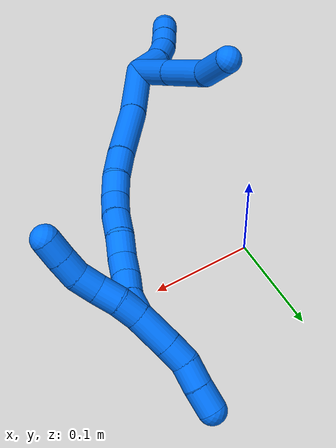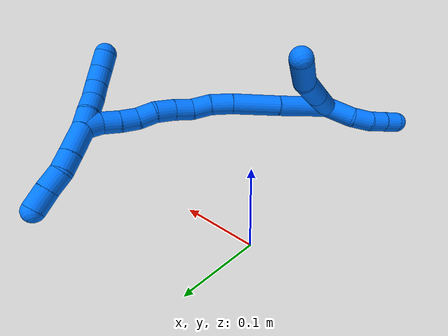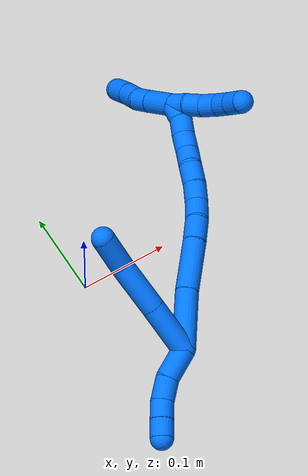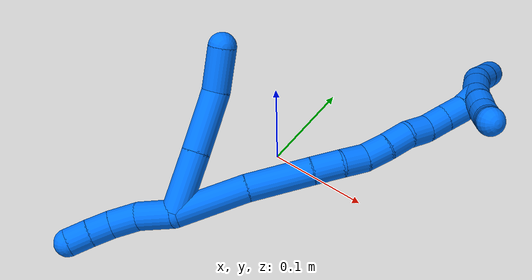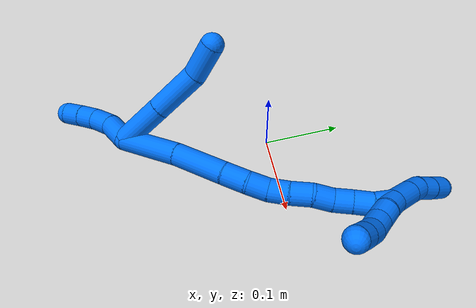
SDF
<sdf version="1.7">
 <world name="default">
  <model name="14">
   <static>0</static>
   <link name="14">
    <collision name="collision-cylinder-e_1_2_8">
     <pose>-0.008492 0.026161 -0.003708 -1.71158 -0.310983 0.35723</pose>
     <geometry><cylinder><radius>0.0125</radius><length>0.055507</length></cylinder></geometry>
     <surface>
      <friction><ode><mu>1.16</mu><mu2>1.16</mu2><slip1>0</slip1><slip2>0</slip2></ode></friction>
      <contact><ode><kp>1e+06</kp><kd>1</kd><max_vel>0</max_vel><min_depth>0.001</min_depth></ode></contact>
     </surface>
    </collision>
    <visual name="visual-cylinder-e_1_2_8">
     <pose>-0.008492 0.026161 -0.003708 -1.71158 -0.310983 0.35723</pose>
     <geometry><cylinder><radius>0.0125</radius><length>0.055507</length></cylinder></geometry>
     <material><ambient>0 0.462745 1 1</ambient></material>
    </visual>
    <collision name="collision-cylinder-e_2_8_9">
     <pose>-0.025578 0.07812 -0.011398 -1.72399 -0.318019 0.369775</pose>
     <geometry><cylinder><radius>0.0125</radius><length>0.054964</length></cylinder></geometry>
     <surface>
      <friction><ode><mu>1.16</mu><mu2>1.16</mu2><slip1>0</slip1><slip2>0</slip2></ode></friction>
      <contact><ode><kp>1e+06</kp><kd>1</kd><max_vel>0</max_vel><min_depth>0.001</min_depth></ode></contact>
     </surface>
    </collision>
    <visual name="visual-cylinder-e_2_8_9">
     <pose>-0.025578 0.07812 -0.011398 -1.72399 -0.318019 0.369775</pose>
     <geometry><cylinder><radius>0.0125</radius><length>0.054964</length></cylinder></geometry>
     <material><ambient>0 0.462745 1 1</ambient></material>
    </visual>
    <collision name="collision-cylinder-e_3_9_6">
     <pose>-0.04505 0.12037 -0.014106 -1.49341 -0.582847 0.541569</pose>
     <geometry><cylinder><radius>0.0125</radius><length>0.03953</length></cylinder></geometry>
     <surface>
      <friction><ode><mu>1.16</mu><mu2>1.16</mu2><slip1>0</slip1><slip2>0</slip2></ode></friction>
      <contact><ode><kp>1e+06</kp><kd>1</kd><max_vel>0</max_vel><min_depth>0.001</min_depth></ode></contact>
     </surface>
    </collision>
    <visual name="visual-cylinder-e_3_9_6">
     <pose>-0.04505 0.12037 -0.014106 -1.49341 -0.582847 0.541569</pose>
     <geometry><cylinder><radius>0.0125</radius><length>0.03953</length></cylinder></geometry>
     <material><ambient>0 0.462745 1 1</ambient></material>
    </visual>
    <collision name="collision-cylinder-e_1_2_10">
     <pose>-0.008047 -0.010783 -0.010783 2.35619 -0.485549 -1.07774</pose>
     <geometry><cylinder><radius>0.0125</radius><length>0.034484</length></cylinder></geometry>
     <surface>
      <friction><ode><mu>1.16</mu><mu2>1.16</mu2><slip1>0</slip1><slip2>0</slip2></ode></friction>
      <contact><ode><kp>1e+06</kp><kd>1</kd><max_vel>0</max_vel><min_depth>0.001</min_depth></ode></contact>
     </surface>
    </collision>
    <visual name="visual-cylinder-e_1_2_10">
     <pose>-0.008047 -0.010783 -0.010783 2.35619 -0.485549 -1.07774</pose>
     <geometry><cylinder><radius>0.0125</radius><length>0.034484</length></cylinder></geometry>
     <material><ambient>0 0.462745 1 1</ambient></material>
    </visual>
    <collision name="collision-cylinder-e_2_10_11">
     <pose>-0.021824 -0.031802 -0.026233 1.99867 -0.471133 -0.714502</pose>
     <geometry><cylinder><radius>0.0125</radius><length>0.025252</length></cylinder></geometry>
     <surface>
      <friction><ode><mu>1.16</mu><mu2>1.16</mu2><slip1>0</slip1><slip2>0</slip2></ode></friction>
      <contact><ode><kp>1e+06</kp><kd>1</kd><max_vel>0</max_vel><min_depth>0.001</min_depth></ode></contact>
     </surface>
    </collision>
    <visual name="visual-cylinder-e_2_10_11">
     <pose>-0.021824 -0.031802 -0.026233 1.99867 -0.471133 -0.714502</pose>
     <geometry><cylinder><radius>0.0125</radius><length>0.025252</length></cylinder></geometry>
     <material><ambient>0 0.462745 1 1</ambient></material>
    </visual>
    <collision name="collision-cylinder-e_3_11_12">
     <pose>-0.032384 -0.050752 -0.032453 1.74698 -0.499441 -0.591086</pose>
     <geometry><cylinder><radius>0.0125</radius><length>0.020165</length></cylinder></geometry>
     <surface>
      <friction><ode><mu>1.16</mu><mu2>1.16</mu2><slip1>0</slip1><slip2>0</slip2></ode></friction>
      <contact><ode><kp>1e+06</kp><kd>1</kd><max_vel>0</max_vel><min_depth>0.001</min_depth></ode></contact>
     </surface>
    </collision>
    <visual name="visual-cylinder-e_3_11_12">
     <pose>-0.032384 -0.050752 -0.032453 1.74698 -0.499441 -0.591086</pose>
     <geometry><cylinder><radius>0.0125</radius><length>0.020165</length></cylinder></geometry>
     <material><ambient>0 0.462745 1 1</ambient></material>
    </visual>
    <collision name="collision-cylinder-e_4_12_5">
     <pose>-0.041728 -0.068331 -0.035426 1.72977 -0.465969 -0.54299</pose>
     <geometry><cylinder><radius>0.0125</radius><length>0.020099</length></cylinder></geometry>
     <surface>
      <friction><ode><mu>1.16</mu><mu2>1.16</mu2><slip1>0</slip1><slip2>0</slip2></ode></friction>
      <contact><ode><kp>1e+06</kp><kd>1</kd><max_vel>0</max_vel><min_depth>0.001</min_depth></ode></contact>
     </surface>
    </collision>
    <visual name="visual-cylinder-e_4_12_5">
     <pose>-0.041728 -0.068331 -0.035426 1.72977 -0.465969 -0.54299</pose>
     <geometry><cylinder><radius>0.0125</radius><length>0.020099</length></cylinder></geometry>
     <material><ambient>0 0.462745 1 1</ambient></material>
    </visual>
    <collision name="collision-cylinder-e_1_2_13">
     <pose>0.016669 0.027619 0.00526 -1.38259 0.535165 -0.446186</pose>
     <geometry><cylinder><radius>0.0125</radius><length>0.065371</length></cylinder></geometry>
     <surface>
      <friction><ode><mu>1.16</mu><mu2>1.16</mu2><slip1>0</slip1><slip2>0</slip2></ode></friction>
      <contact><ode><kp>1e+06</kp><kd>1</kd><max_vel>0</max_vel><min_depth>0.001</min_depth></ode></contact>
     </surface>
    </collision>
    <visual name="visual-cylinder-e_1_2_13">
     <pose>0.016669 0.027619 0.00526 -1.38259 0.535165 -0.446186</pose>
     <geometry><cylinder><radius>0.0125</radius><length>0.065371</length></cylinder></geometry>
     <material><ambient>0 0.462745 1 1</ambient></material>
    </visual>
    <collision name="collision-cylinder-e_2_13_14">
     <pose>0.049551 0.078407 0.017105 -1.29391 0.592457 -0.453196</pose>
     <geometry><cylinder><radius>0.0125</radius><length>0.058069</length></cylinder></geometry>
     <surface>
      <friction><ode><mu>1.16</mu><mu2>1.16</mu2><slip1>0</slip1><slip2>0</slip2></ode></friction>
      <contact><ode><kp>1e+06</kp><kd>1</kd><max_vel>0</max_vel><min_depth>0.001</min_depth></ode></contact>
     </surface>
    </collision>
    <visual name="visual-cylinder-e_2_13_14">
     <pose>0.049551 0.078407 0.017105 -1.29391 0.592457 -0.453196</pose>
     <geometry><cylinder><radius>0.0125</radius><length>0.058069</length></cylinder></geometry>
     <material><ambient>0 0.462745 1 1</ambient></material>
    </visual>
    <collision name="collision-cylinder-e_3_14_15">
     <pose>0.073679 0.112062 0.025737 -1.37795 0.637575 -0.530831</pose>
     <geometry><cylinder><radius>0.0125</radius><length>0.026594</length></cylinder></geometry>
     <surface>
      <friction><ode><mu>1.16</mu><mu2>1.16</mu2><slip1>0</slip1><slip2>0</slip2></ode></friction>
      <contact><ode><kp>1e+06</kp><kd>1</kd><max_vel>0</max_vel><min_depth>0.001</min_depth></ode></contact>
     </surface>
    </collision>
    <visual name="visual-cylinder-e_3_14_15">
     <pose>0.073679 0.112062 0.025737 -1.37795 0.637575 -0.530831</pose>
     <geometry><cylinder><radius>0.0125</radius><length>0.026594</length></cylinder></geometry>
     <material><ambient>0 0.462745 1 1</ambient></material>
    </visual>
    <collision name="collision-cylinder-e_4_15_16">
     <pose>0.089202 0.131047 0.0274 -1.61602 0.729666 -0.760335</pose>
     <geometry><cylinder><radius>0.0125</radius><length>0.022825</length></cylinder></geometry>
     <surface>
      <friction><ode><mu>1.16</mu><mu2>1.16</mu2><slip1>0</slip1><slip2>0</slip2></ode></friction>
      <contact><ode><kp>1e+06</kp><kd>1</kd><max_vel>0</max_vel><min_depth>0.001</min_depth></ode></contact>
     </surface>
    </collision>
    <visual name="visual-cylinder-e_4_15_16">
     <pose>0.089202 0.131047 0.0274 -1.61602 0.729666 -0.760335</pose>
     <geometry><cylinder><radius>0.0125</radius><length>0.022825</length></cylinder></geometry>
     <material><ambient>0 0.462745 1 1</ambient></material>
    </visual>
    <collision name="collision-cylinder-e_5_16_17">
     <pose>0.101727 0.149555 0.027552 -1.51722 0.45608 -0.433034</pose>
     <geometry><cylinder><radius>0.0125</radius><length>0.022331</length></cylinder></geometry>
     <surface>
      <friction><ode><mu>1.16</mu><mu2>1.16</mu2><slip1>0</slip1><slip2>0</slip2></ode></friction>
      <contact><ode><kp>1e+06</kp><kd>1</kd><max_vel>0</max_vel><min_depth>0.001</min_depth></ode></contact>
     </surface>
    </collision>
    <visual name="visual-cylinder-e_5_16_17">
     <pose>0.101727 0.149555 0.027552 -1.51722 0.45608 -0.433034</pose>
     <geometry><cylinder><radius>0.0125</radius><length>0.022331</length></cylinder></geometry>
     <material><ambient>0 0.462745 1 1</ambient></material>
    </visual>
    <collision name="collision-cylinder-e_6_17_18">
     <pose>0.111474 0.169789 0.027296 -1.64819 0.440132 -0.474317</pose>
     <geometry><cylinder><radius>0.0125</radius><length>0.02267</length></cylinder></geometry>
     <surface>
      <friction><ode><mu>1.16</mu><mu2>1.16</mu2><slip1>0</slip1><slip2>0</slip2></ode></friction>
      <contact><ode><kp>1e+06</kp><kd>1</kd><max_vel>0</max_vel><min_depth>0.001</min_depth></ode></contact>
     </surface>
    </collision>
    <visual name="visual-cylinder-e_6_17_18">
     <pose>0.111474 0.169789 0.027296 -1.64819 0.440132 -0.474317</pose>
     <geometry><cylinder><radius>0.0125</radius><length>0.02267</length></cylinder></geometry>
     <material><ambient>0 0.462745 1 1</ambient></material>
    </visual>
    <collision name="collision-cylinder-e_7_18_19">
     <pose>0.123071 0.187866 0.024594 -1.80926 0.697127 -0.866113</pose>
     <geometry><cylinder><radius>0.0125</radius><length>0.021082</length></cylinder></geometry>
     <surface>
      <friction><ode><mu>1.16</mu><mu2>1.16</mu2><slip1>0</slip1><slip2>0</slip2></ode></friction>
      <contact><ode><kp>1e+06</kp><kd>1</kd><max_vel>0</max_vel><min_depth>0.001</min_depth></ode></contact>
     </surface>
    </collision>
    <visual name="visual-cylinder-e_7_18_19">
     <pose>0.123071 0.187866 0.024594 -1.80926 0.697127 -0.866113</pose>
     <geometry><cylinder><radius>0.0125</radius><length>0.021082</length></cylinder></geometry>
     <material><ambient>0 0.462745 1 1</ambient></material>
    </visual>
    <collision name="collision-cylinder-e_8_19_20">
     <pose>0.134458 0.204828 0.021708 -1.67771 0.467051 -0.517641</pose>
     <geometry><cylinder><radius>0.0125</radius><length>0.020521</length></cylinder></geometry>
     <surface>
      <friction><ode><mu>1.16</mu><mu2>1.16</mu2><slip1>0</slip1><slip2>0</slip2></ode></friction>
      <contact><ode><kp>1e+06</kp><kd>1</kd><max_vel>0</max_vel><min_depth>0.001</min_depth></ode></contact>
     </surface>
    </collision>
    <visual name="visual-cylinder-e_8_19_20">
     <pose>0.134458 0.204828 0.021708 -1.67771 0.467051 -0.517641</pose>
     <geometry><cylinder><radius>0.0125</radius><length>0.020521</length></cylinder></geometry>
     <material><ambient>0 0.462745 1 1</ambient></material>
    </visual>
    <collision name="collision-cylinder-e_9_20_21">
     <pose>0.143515 0.223194 0.020699 -1.57419 0.446975 -0.448445</pose>
     <geometry><cylinder><radius>0.0125</radius><length>0.020529</length></cylinder></geometry>
     <surface>
      <friction><ode><mu>1.16</mu><mu2>1.16</mu2><slip1>0</slip1><slip2>0</slip2></ode></friction>
      <contact><ode><kp>1e+06</kp><kd>1</kd><max_vel>0</max_vel><min_depth>0.001</min_depth></ode></contact>
     </surface>
    </collision>
    <visual name="visual-cylinder-e_9_20_21">
     <pose>0.143515 0.223194 0.020699 -1.57419 0.446975 -0.448445</pose>
     <geometry><cylinder><radius>0.0125</radius><length>0.020529</length></cylinder></geometry>
     <material><ambient>0 0.462745 1 1</ambient></material>
    </visual>
    <collision name="collision-cylinder-e_10_21_1">
     <pose>0.151116 0.241468 0.017712 -1.88742 0.321828 -0.440705</pose>
     <geometry><cylinder><radius>0.0125</radius><length>0.020008</length></cylinder></geometry>
     <surface>
      <friction><ode><mu>1.16</mu><mu2>1.16</mu2><slip1>0</slip1><slip2>0</slip2></ode></friction>
      <contact><ode><kp>1e+06</kp><kd>1</kd><max_vel>0</max_vel><min_depth>0.001</min_depth></ode></contact>
     </surface>
    </collision>
    <visual name="visual-cylinder-e_10_21_1">
     <pose>0.151116 0.241468 0.017712 -1.88742 0.321828 -0.440705</pose>
     <geometry><cylinder><radius>0.0125</radius><length>0.020008</length></cylinder></geometry>
     <material><ambient>0 0.462745 1 1</ambient></material>
    </visual>
    <collision name="collision-cylinder-e_1_1_22">
     <pose>0.159702 0.257313 0.000338 -2.69943 0.327571 -1.26806</pose>
     <geometry><cylinder><radius>0.0125</radius><length>0.033699</length></cylinder></geometry>
     <surface>
      <friction><ode><mu>1.16</mu><mu2>1.16</mu2><slip1>0</slip1><slip2>0</slip2></ode></friction>
      <contact><ode><kp>1e+06</kp><kd>1</kd><max_vel>0</max_vel><min_depth>0.001</min_depth></ode></contact>
     </surface>
    </collision>
    <visual name="visual-cylinder-e_1_1_22">
     <pose>0.159702 0.257313 0.000338 -2.69943 0.327571 -1.26806</pose>
     <geometry><cylinder><radius>0.0125</radius><length>0.033699</length></cylinder></geometry>
     <material><ambient>0 0.462745 1 1</ambient></material>
    </visual>
    <collision name="collision-cylinder-e_2_22_23">
     <pose>0.16861 0.268333 -0.022707 -2.6891 0.348694 -1.3063</pose>
     <geometry><cylinder><radius>0.0125</radius><length>0.020412</length></cylinder></geometry>
     <surface>
      <friction><ode><mu>1.16</mu><mu2>1.16</mu2><slip1>0</slip1><slip2>0</slip2></ode></friction>
      <contact><ode><kp>1e+06</kp><kd>1</kd><max_vel>0</max_vel><min_depth>0.001</min_depth></ode></contact>
     </surface>
    </collision>
    <visual name="visual-cylinder-e_2_22_23">
     <pose>0.16861 0.268333 -0.022707 -2.6891 0.348694 -1.3063</pose>
     <geometry><cylinder><radius>0.0125</radius><length>0.020412</length></cylinder></geometry>
     <material><ambient>0 0.462745 1 1</ambient></material>
    </visual>
    <collision name="collision-cylinder-e_3_23_24">
     <pose>0.178448 0.277796 -0.03874 -2.52319 0.609919 -1.55607</pose>
     <geometry><cylinder><radius>0.0125</radius><length>0.022177</length></cylinder></geometry>
     <surface>
      <friction><ode><mu>1.16</mu><mu2>1.16</mu2><slip1>0</slip1><slip2>0</slip2></ode></friction>
      <contact><ode><kp>1e+06</kp><kd>1</kd><max_vel>0</max_vel><min_depth>0.001</min_depth></ode></contact>
     </surface>
    </collision>
    <visual name="visual-cylinder-e_3_23_24">
     <pose>0.178448 0.277796 -0.03874 -2.52319 0.609919 -1.55607</pose>
     <geometry><cylinder><radius>0.0125</radius><length>0.022177</length></cylinder></geometry>
     <material><ambient>0 0.462745 1 1</ambient></material>
    </visual>
    <collision name="collision-cylinder-e_4_24_4">
     <pose>0.19119 0.288204 -0.054709 -2.60116 0.569179 -1.62535</pose>
     <geometry><cylinder><radius>0.0125</radius><length>0.023713</length></cylinder></geometry>
     <surface>
      <friction><ode><mu>1.16</mu><mu2>1.16</mu2><slip1>0</slip1><slip2>0</slip2></ode></friction>
      <contact><ode><kp>1e+06</kp><kd>1</kd><max_vel>0</max_vel><min_depth>0.001</min_depth></ode></contact>
     </surface>
    </collision>
    <visual name="visual-cylinder-e_4_24_4">
     <pose>0.19119 0.288204 -0.054709 -2.60116 0.569179 -1.62535</pose>
     <geometry><cylinder><radius>0.0125</radius><length>0.023713</length></cylinder></geometry>
     <material><ambient>0 0.462745 1 1</ambient></material>
    </visual>
    <collision name="collision-cylinder-e_1_1_25">
     <pose>0.152038 0.247436 0.024013 0.318388 -0.226196 -0.036468</pose>
     <geometry><cylinder><radius>0.0125</radius><length>0.02</length></cylinder></geometry>
     <surface>
      <friction><ode><mu>1.16</mu><mu2>1.16</mu2><slip1>0</slip1><slip2>0</slip2></ode></friction>
      <contact><ode><kp>1e+06</kp><kd>1</kd><max_vel>0</max_vel><min_depth>0.001</min_depth></ode></contact>
     </surface>
    </collision>
    <visual name="visual-cylinder-e_1_1_25">
     <pose>0.152038 0.247436 0.024013 0.318388 -0.226196 -0.036468</pose>
     <geometry><cylinder><radius>0.0125</radius><length>0.02</length></cylinder></geometry>
     <material><ambient>0 0.462745 1 1</ambient></material>
    </visual>
    <collision name="collision-cylinder-e_2_25_26">
     <pose>0.148959 0.240476 0.042434 0.403214 -0.083651 -0.017106</pose>
     <geometry><cylinder><radius>0.0125</radius><length>0.02</length></cylinder></geometry>
     <surface>
      <friction><ode><mu>1.16</mu><mu2>1.16</mu2><slip1>0</slip1><slip2>0</slip2></ode></friction>
      <contact><ode><kp>1e+06</kp><kd>1</kd><max_vel>0</max_vel><min_depth>0.001</min_depth></ode></contact>
     </surface>
    </collision>
    <visual name="visual-cylinder-e_2_25_26">
     <pose>0.148959 0.240476 0.042434 0.403214 -0.083651 -0.017106</pose>
     <geometry><cylinder><radius>0.0125</radius><length>0.02</length></cylinder></geometry>
     <material><ambient>0 0.462745 1 1</ambient></material>
    </visual>
    <collision name="collision-cylinder-e_3_26_27">
     <pose>0.146493 0.233724 0.061048 0.292122 -0.163772 -0.024145</pose>
     <geometry><cylinder><radius>0.0125</radius><length>0.02</length></cylinder></geometry>
     <surface>
      <friction><ode><mu>1.16</mu><mu2>1.16</mu2><slip1>0</slip1><slip2>0</slip2></ode></friction>
      <contact><ode><kp>1e+06</kp><kd>1</kd><max_vel>0</max_vel><min_depth>0.001</min_depth></ode></contact>
     </surface>
    </collision>
    <visual name="visual-cylinder-e_3_26_27">
     <pose>0.146493 0.233724 0.061048 0.292122 -0.163772 -0.024145</pose>
     <geometry><cylinder><radius>0.0125</radius><length>0.02</length></cylinder></geometry>
     <material><ambient>0 0.462745 1 1</ambient></material>
    </visual>
    <collision name="collision-cylinder-e_4_27_28">
     <pose>0.140547 0.22883 0.079281 0.229609 -0.446232 -0.052315</pose>
     <geometry><cylinder><radius>0.0125</radius><length>0.02</length></cylinder></geometry>
     <surface>
      <friction><ode><mu>1.16</mu><mu2>1.16</mu2><slip1>0</slip1><slip2>0</slip2></ode></friction>
      <contact><ode><kp>1e+06</kp><kd>1</kd><max_vel>0</max_vel><min_depth>0.001</min_depth></ode></contact>
     </surface>
    </collision>
    <visual name="visual-cylinder-e_4_27_28">
     <pose>0.140547 0.22883 0.079281 0.229609 -0.446232 -0.052315</pose>
     <geometry><cylinder><radius>0.0125</radius><length>0.02</length></cylinder></geometry>
     <material><ambient>0 0.462745 1 1</ambient></material>
    </visual>
    <collision name="collision-cylinder-e_5_28_3">
     <pose>0.131513 0.225011 0.096703 0.201666 -0.491417 -0.050734</pose>
     <geometry><cylinder><radius>0.0125</radius><length>0.02</length></cylinder></geometry>
     <surface>
      <friction><ode><mu>1.16</mu><mu2>1.16</mu2><slip1>0</slip1><slip2>0</slip2></ode></friction>
      <contact><ode><kp>1e+06</kp><kd>1</kd><max_vel>0</max_vel><min_depth>0.001</min_depth></ode></contact>
     </surface>
    </collision>
    <visual name="visual-cylinder-e_5_28_3">
     <pose>0.131513 0.225011 0.096703 0.201666 -0.491417 -0.050734</pose>
     <geometry><cylinder><radius>0.0125</radius><length>0.02</length></cylinder></geometry>
     <material><ambient>0 0.462745 1 1</ambient></material>
    </visual>
    <collision name="collision-sphere-3">
     <pose>0.126794 0.223245 0.105341 0 -0 0</pose>
     <geometry><sphere><radius>0.0125</radius></sphere></geometry>
     <surface>
      <friction><ode><mu>1.16</mu><mu2>1.16</mu2><slip1>0</slip1><slip2>0</slip2></ode></friction>
      <contact><ode><kp>1e+06</kp><kd>1</kd><max_vel>0</max_vel><min_depth>0.001</min_depth></ode></contact>
     </surface>
    </collision>
    <visual name="visual-sphere-3">
     <pose>0.126794 0.223245 0.105341 0 -0 0</pose>
     <geometry><sphere><radius>0.0125</radius></sphere></geometry>
     <material><ambient>0 0.462745 1 1</ambient></material>
    </visual>
    <collision name="collision-sphere-28">
     <pose>0.136232 0.226777 0.088065 0 -0 0</pose>
     <geometry><sphere><radius>0.0125</radius></sphere></geometry>
     <surface>
      <friction><ode><mu>1.16</mu><mu2>1.16</mu2><slip1>0</slip1><slip2>0</slip2></ode></friction>
      <contact><ode><kp>1e+06</kp><kd>1</kd><max_vel>0</max_vel><min_depth>0.001</min_depth></ode></contact>
     </surface>
    </collision>
    <visual name="visual-sphere-28">
     <pose>0.136232 0.226777 0.088065 0 -0 0</pose>
     <geometry><sphere><radius>0.0125</radius></sphere></geometry>
     <material><ambient>0 0.462745 1 1</ambient></material>
    </visual>
    <collision name="collision-sphere-27">
     <pose>0.144863 0.230883 0.070497 0 -0 0</pose>
     <geometry><sphere><radius>0.0125</radius></sphere></geometry>
     <surface>
      <friction><ode><mu>1.16</mu><mu2>1.16</mu2><slip1>0</slip1><slip2>0</slip2></ode></friction>
      <contact><ode><kp>1e+06</kp><kd>1</kd><max_vel>0</max_vel><min_depth>0.001</min_depth></ode></contact>
     </surface>
    </collision>
    <visual name="visual-sphere-27">
     <pose>0.144863 0.230883 0.070497 0 -0 0</pose>
     <geometry><sphere><radius>0.0125</radius></sphere></geometry>
     <material><ambient>0 0.462745 1 1</ambient></material>
    </visual>
    <collision name="collision-sphere-26">
     <pose>0.148124 0.236566 0.0516 0 -0 0</pose>
     <geometry><sphere><radius>0.0125</radius></sphere></geometry>
     <surface>
      <friction><ode><mu>1.16</mu><mu2>1.16</mu2><slip1>0</slip1><slip2>0</slip2></ode></friction>
      <contact><ode><kp>1e+06</kp><kd>1</kd><max_vel>0</max_vel><min_depth>0.001</min_depth></ode></contact>
     </surface>
    </collision>
    <visual name="visual-sphere-26">
     <pose>0.148124 0.236566 0.0516 0 -0 0</pose>
     <geometry><sphere><radius>0.0125</radius></sphere></geometry>
     <material><ambient>0 0.462745 1 1</ambient></material>
    </visual>
    <collision name="collision-sphere-25">
     <pose>0.149795 0.244386 0.033268 0 -0 0</pose>
     <geometry><sphere><radius>0.0125</radius></sphere></geometry>
     <surface>
      <friction><ode><mu>1.16</mu><mu2>1.16</mu2><slip1>0</slip1><slip2>0</slip2></ode></friction>
      <contact><ode><kp>1e+06</kp><kd>1</kd><max_vel>0</max_vel><min_depth>0.001</min_depth></ode></contact>
     </surface>
    </collision>
    <visual name="visual-sphere-25">
     <pose>0.149795 0.244386 0.033268 0 -0 0</pose>
     <geometry><sphere><radius>0.0125</radius></sphere></geometry>
     <material><ambient>0 0.462745 1 1</ambient></material>
    </visual>
    <collision name="collision-sphere-4">
     <pose>0.197579 0.293342 -0.063273 0 -0 0</pose>
     <geometry><sphere><radius>0.0125</radius></sphere></geometry>
     <surface>
      <friction><ode><mu>1.16</mu><mu2>1.16</mu2><slip1>0</slip1><slip2>0</slip2></ode></friction>
      <contact><ode><kp>1e+06</kp><kd>1</kd><max_vel>0</max_vel><min_depth>0.001</min_depth></ode></contact>
     </surface>
    </collision>
    <visual name="visual-sphere-4">
     <pose>0.197579 0.293342 -0.063273 0 -0 0</pose>
     <geometry><sphere><radius>0.0125</radius></sphere></geometry>
     <material><ambient>0 0.462745 1 1</ambient></material>
    </visual>
    <collision name="collision-sphere-24">
     <pose>0.1848 0.283066 -0.046145 0 -0 0</pose>
     <geometry><sphere><radius>0.0125</radius></sphere></geometry>
     <surface>
      <friction><ode><mu>1.16</mu><mu2>1.16</mu2><slip1>0</slip1><slip2>0</slip2></ode></friction>
      <contact><ode><kp>1e+06</kp><kd>1</kd><max_vel>0</max_vel><min_depth>0.001</min_depth></ode></contact>
     </surface>
    </collision>
    <visual name="visual-sphere-24">
     <pose>0.1848 0.283066 -0.046145 0 -0 0</pose>
     <geometry><sphere><radius>0.0125</radius></sphere></geometry>
     <material><ambient>0 0.462745 1 1</ambient></material>
    </visual>
    <collision name="collision-sphere-23">
     <pose>0.172097 0.272527 -0.031334 0 -0 0</pose>
     <geometry><sphere><radius>0.0125</radius></sphere></geometry>
     <surface>
      <friction><ode><mu>1.16</mu><mu2>1.16</mu2><slip1>0</slip1><slip2>0</slip2></ode></friction>
      <contact><ode><kp>1e+06</kp><kd>1</kd><max_vel>0</max_vel><min_depth>0.001</min_depth></ode></contact>
     </surface>
    </collision>
    <visual name="visual-sphere-23">
     <pose>0.172097 0.272527 -0.031334 0 -0 0</pose>
     <geometry><sphere><radius>0.0125</radius></sphere></geometry>
     <material><ambient>0 0.462745 1 1</ambient></material>
    </visual>
    <collision name="collision-sphere-22">
     <pose>0.165123 0.26414 -0.014081 0 -0 0</pose>
     <geometry><sphere><radius>0.0125</radius></sphere></geometry>
     <surface>
      <friction><ode><mu>1.16</mu><mu2>1.16</mu2><slip1>0</slip1><slip2>0</slip2></ode></friction>
      <contact><ode><kp>1e+06</kp><kd>1</kd><max_vel>0</max_vel><min_depth>0.001</min_depth></ode></contact>
     </surface>
    </collision>
    <visual name="visual-sphere-22">
     <pose>0.165123 0.26414 -0.014081 0 -0 0</pose>
     <geometry><sphere><radius>0.0125</radius></sphere></geometry>
     <material><ambient>0 0.462745 1 1</ambient></material>
    </visual>
    <collision name="collision-sphere-1">
     <pose>0.15428 0.250487 0.014758 0 -0 0</pose>
     <geometry><sphere><radius>0.0125</radius></sphere></geometry>
     <surface>
      <friction><ode><mu>1.16</mu><mu2>1.16</mu2><slip1>0</slip1><slip2>0</slip2></ode></friction>
      <contact><ode><kp>1e+06</kp><kd>1</kd><max_vel>0</max_vel><min_depth>0.001</min_depth></ode></contact>
     </surface>
    </collision>
    <visual name="visual-sphere-1">
     <pose>0.15428 0.250487 0.014758 0 -0 0</pose>
     <geometry><sphere><radius>0.0125</radius></sphere></geometry>
     <material><ambient>0 0.462745 1 1</ambient></material>
    </visual>
    <collision name="collision-sphere-21">
     <pose>0.147952 0.23245 0.020667 0 -0 0</pose>
     <geometry><sphere><radius>0.0125</radius></sphere></geometry>
     <surface>
      <friction><ode><mu>1.16</mu><mu2>1.16</mu2><slip1>0</slip1><slip2>0</slip2></ode></friction>
      <contact><ode><kp>1e+06</kp><kd>1</kd><max_vel>0</max_vel><min_depth>0.001</min_depth></ode></contact>
     </surface>
    </collision>
    <visual name="visual-sphere-21">
     <pose>0.147952 0.23245 0.020667 0 -0 0</pose>
     <geometry><sphere><radius>0.0125</radius></sphere></geometry>
     <material><ambient>0 0.462745 1 1</ambient></material>
    </visual>
    <collision name="collision-sphere-11">
     <pose>-0.027555 -0.042038 -0.030902 0 -0 0</pose>
     <geometry><sphere><radius>0.0125</radius></sphere></geometry>
     <surface>
      <friction><ode><mu>1.16</mu><mu2>1.16</mu2><slip1>0</slip1><slip2>0</slip2></ode></friction>
      <contact><ode><kp>1e+06</kp><kd>1</kd><max_vel>0</max_vel><min_depth>0.001</min_depth></ode></contact>
     </surface>
    </collision>
    <visual name="visual-sphere-11">
     <pose>-0.027555 -0.042038 -0.030902 0 -0 0</pose>
     <geometry><sphere><radius>0.0125</radius></sphere></geometry>
     <material><ambient>0 0.462745 1 1</ambient></material>
    </visual>
    <collision name="collision-sphere-10">
     <pose>-0.016093 -0.021565 -0.021565 0 -0 0</pose>
     <geometry><sphere><radius>0.0125</radius></sphere></geometry>
     <surface>
      <friction><ode><mu>1.16</mu><mu2>1.16</mu2><slip1>0</slip1><slip2>0</slip2></ode></friction>
      <contact><ode><kp>1e+06</kp><kd>1</kd><max_vel>0</max_vel><min_depth>0.001</min_depth></ode></contact>
     </surface>
    </collision>
    <visual name="visual-sphere-10">
     <pose>-0.016093 -0.021565 -0.021565 0 -0 0</pose>
     <geometry><sphere><radius>0.0125</radius></sphere></geometry>
     <material><ambient>0 0.462745 1 1</ambient></material>
    </visual>
    <collision name="collision-sphere-6">
     <pose>-0.055928 0.136822 -0.01283 0 -0 0</pose>
     <geometry><sphere><radius>0.0125</radius></sphere></geometry>
     <surface>
      <friction><ode><mu>1.16</mu><mu2>1.16</mu2><slip1>0</slip1><slip2>0</slip2></ode></friction>
      <contact><ode><kp>1e+06</kp><kd>1</kd><max_vel>0</max_vel><min_depth>0.001</min_depth></ode></contact>
     </surface>
    </collision>
    <visual name="visual-sphere-6">
     <pose>-0.055928 0.136822 -0.01283 0 -0 0</pose>
     <geometry><sphere><radius>0.0125</radius></sphere></geometry>
     <material><ambient>0 0.462745 1 1</ambient></material>
    </visual>
    <collision name="collision-sphere-9">
     <pose>-0.034171 0.103918 -0.015382 0 -0 0</pose>
     <geometry><sphere><radius>0.0125</radius></sphere></geometry>
     <surface>
      <friction><ode><mu>1.16</mu><mu2>1.16</mu2><slip1>0</slip1><slip2>0</slip2></ode></friction>
      <contact><ode><kp>1e+06</kp><kd>1</kd><max_vel>0</max_vel><min_depth>0.001</min_depth></ode></contact>
     </surface>
    </collision>
    <visual name="visual-sphere-9">
     <pose>-0.034171 0.103918 -0.015382 0 -0 0</pose>
     <geometry><sphere><radius>0.0125</radius></sphere></geometry>
     <material><ambient>0 0.462745 1 1</ambient></material>
    </visual>
    <collision name="collision-sphere-2">
     <geometry><sphere><radius>0.0125</radius></sphere></geometry>
     <surface>
      <friction><ode><mu>1.16</mu><mu2>1.16</mu2><slip1>0</slip1><slip2>0</slip2></ode></friction>
      <contact><ode><kp>1e+06</kp><kd>1</kd><max_vel>0</max_vel><min_depth>0.001</min_depth></ode></contact>
     </surface>
    </collision>
    <visual name="visual-sphere-2">
     <geometry><sphere><radius>0.0125</radius></sphere></geometry>
     <material><ambient>0 0.462745 1 1</ambient></material>
    </visual>
    <collision name="collision-sphere-19">
     <pose>0.129839 0.195719 0.022685 0 -0 0</pose>
     <geometry><sphere><radius>0.0125</radius></sphere></geometry>
     <surface>
      <friction><ode><mu>1.16</mu><mu2>1.16</mu2><slip1>0</slip1><slip2>0</slip2></ode></friction>
      <contact><ode><kp>1e+06</kp><kd>1</kd><max_vel>0</max_vel><min_depth>0.001</min_depth></ode></contact>
     </surface>
    </collision>
    <visual name="visual-sphere-19">
     <pose>0.129839 0.195719 0.022685 0 -0 0</pose>
     <geometry><sphere><radius>0.0125</radius></sphere></geometry>
     <material><ambient>0 0.462745 1 1</ambient></material>
    </visual>
    <collision name="collision-sphere-8">
     <pose>-0.016985 0.052321 -0.007415 0 -0 0</pose>
     <geometry><sphere><radius>0.0125</radius></sphere></geometry>
     <surface>
      <friction><ode><mu>1.16</mu><mu2>1.16</mu2><slip1>0</slip1><slip2>0</slip2></ode></friction>
      <contact><ode><kp>1e+06</kp><kd>1</kd><max_vel>0</max_vel><min_depth>0.001</min_depth></ode></contact>
     </surface>
    </collision>
    <visual name="visual-sphere-8">
     <pose>-0.016985 0.052321 -0.007415 0 -0 0</pose>
     <geometry><sphere><radius>0.0125</radius></sphere></geometry>
     <material><ambient>0 0.462745 1 1</ambient></material>
    </visual>
    <collision name="collision-sphere-12">
     <pose>-0.037213 -0.059466 -0.034004 0 -0 0</pose>
     <geometry><sphere><radius>0.0125</radius></sphere></geometry>
     <surface>
      <friction><ode><mu>1.16</mu><mu2>1.16</mu2><slip1>0</slip1><slip2>0</slip2></ode></friction>
      <contact><ode><kp>1e+06</kp><kd>1</kd><max_vel>0</max_vel><min_depth>0.001</min_depth></ode></contact>
     </surface>
    </collision>
    <visual name="visual-sphere-12">
     <pose>-0.037213 -0.059466 -0.034004 0 -0 0</pose>
     <geometry><sphere><radius>0.0125</radius></sphere></geometry>
     <material><ambient>0 0.462745 1 1</ambient></material>
    </visual>
    <collision name="collision-sphere-5">
     <pose>-0.046243 -0.077196 -0.036847 0 -0 0</pose>
     <geometry><sphere><radius>0.0125</radius></sphere></geometry>
     <surface>
      <friction><ode><mu>1.16</mu><mu2>1.16</mu2><slip1>0</slip1><slip2>0</slip2></ode></friction>
      <contact><ode><kp>1e+06</kp><kd>1</kd><max_vel>0</max_vel><min_depth>0.001</min_depth></ode></contact>
     </surface>
    </collision>
    <visual name="visual-sphere-5">
     <pose>-0.046243 -0.077196 -0.036847 0 -0 0</pose>
     <geometry><sphere><radius>0.0125</radius></sphere></geometry>
     <material><ambient>0 0.462745 1 1</ambient></material>
    </visual>
    <collision name="collision-sphere-13">
     <pose>0.033338 0.055238 0.010521 0 -0 0</pose>
     <geometry><sphere><radius>0.0125</radius></sphere></geometry>
     <surface>
      <friction><ode><mu>1.16</mu><mu2>1.16</mu2><slip1>0</slip1><slip2>0</slip2></ode></friction>
      <contact><ode><kp>1e+06</kp><kd>1</kd><max_vel>0</max_vel><min_depth>0.001</min_depth></ode></contact>
     </surface>
    </collision>
    <visual name="visual-sphere-13">
     <pose>0.033338 0.055238 0.010521 0 -0 0</pose>
     <geometry><sphere><radius>0.0125</radius></sphere></geometry>
     <material><ambient>0 0.462745 1 1</ambient></material>
    </visual>
    <collision name="collision-sphere-14">
     <pose>0.065764 0.101575 0.023689 0 -0 0</pose>
     <geometry><sphere><radius>0.0125</radius></sphere></geometry>
     <surface>
      <friction><ode><mu>1.16</mu><mu2>1.16</mu2><slip1>0</slip1><slip2>0</slip2></ode></friction>
      <contact><ode><kp>1e+06</kp><kd>1</kd><max_vel>0</max_vel><min_depth>0.001</min_depth></ode></contact>
     </surface>
    </collision>
    <visual name="visual-sphere-14">
     <pose>0.065764 0.101575 0.023689 0 -0 0</pose>
     <geometry><sphere><radius>0.0125</radius></sphere></geometry>
     <material><ambient>0 0.462745 1 1</ambient></material>
    </visual>
    <collision name="collision-sphere-15">
     <pose>0.081594 0.122549 0.027785 0 -0 0</pose>
     <geometry><sphere><radius>0.0125</radius></sphere></geometry>
     <surface>
      <friction><ode><mu>1.16</mu><mu2>1.16</mu2><slip1>0</slip1><slip2>0</slip2></ode></friction>
      <contact><ode><kp>1e+06</kp><kd>1</kd><max_vel>0</max_vel><min_depth>0.001</min_depth></ode></contact>
     </surface>
    </collision>
    <visual name="visual-sphere-15">
     <pose>0.081594 0.122549 0.027785 0 -0 0</pose>
     <geometry><sphere><radius>0.0125</radius></sphere></geometry>
     <material><ambient>0 0.462745 1 1</ambient></material>
    </visual>
    <collision name="collision-sphere-16">
     <pose>0.096809 0.139545 0.027015 0 -0 0</pose>
     <geometry><sphere><radius>0.0125</radius></sphere></geometry>
     <surface>
      <friction><ode><mu>1.16</mu><mu2>1.16</mu2><slip1>0</slip1><slip2>0</slip2></ode></friction>
      <contact><ode><kp>1e+06</kp><kd>1</kd><max_vel>0</max_vel><min_depth>0.001</min_depth></ode></contact>
     </surface>
    </collision>
    <visual name="visual-sphere-16">
     <pose>0.096809 0.139545 0.027015 0 -0 0</pose>
     <geometry><sphere><radius>0.0125</radius></sphere></geometry>
     <material><ambient>0 0.462745 1 1</ambient></material>
    </visual>
    <collision name="collision-sphere-17">
     <pose>0.106645 0.159565 0.028089 0 -0 0</pose>
     <geometry><sphere><radius>0.0125</radius></sphere></geometry>
     <surface>
      <friction><ode><mu>1.16</mu><mu2>1.16</mu2><slip1>0</slip1><slip2>0</slip2></ode></friction>
      <contact><ode><kp>1e+06</kp><kd>1</kd><max_vel>0</max_vel><min_depth>0.001</min_depth></ode></contact>
     </surface>
    </collision>
    <visual name="visual-sphere-17">
     <pose>0.106645 0.159565 0.028089 0 -0 0</pose>
     <geometry><sphere><radius>0.0125</radius></sphere></geometry>
     <material><ambient>0 0.462745 1 1</ambient></material>
    </visual>
    <collision name="collision-sphere-18">
     <pose>0.116303 0.180012 0.026503 0 -0 0</pose>
     <geometry><sphere><radius>0.0125</radius></sphere></geometry>
     <surface>
      <friction><ode><mu>1.16</mu><mu2>1.16</mu2><slip1>0</slip1><slip2>0</slip2></ode></friction>
      <contact><ode><kp>1e+06</kp><kd>1</kd><max_vel>0</max_vel><min_depth>0.001</min_depth></ode></contact>
     </surface>
    </collision>
    <visual name="visual-sphere-18">
     <pose>0.116303 0.180012 0.026503 0 -0 0</pose>
     <geometry><sphere><radius>0.0125</radius></sphere></geometry>
     <material><ambient>0 0.462745 1 1</ambient></material>
    </visual>
    <collision name="collision-sphere-20">
     <pose>0.139078 0.213937 0.02073 0 -0 0</pose>
     <geometry><sphere><radius>0.0125</radius></sphere></geometry>
     <surface>
      <friction><ode><mu>1.16</mu><mu2>1.16</mu2><slip1>0</slip1><slip2>0</slip2></ode></friction>
      <contact><ode><kp>1e+06</kp><kd>1</kd><max_vel>0</max_vel><min_depth>0.001</min_depth></ode></contact>
     </surface>
    </collision>
    <visual name="visual-sphere-20">
     <pose>0.139078 0.213937 0.02073 0 -0 0</pose>
     <geometry><sphere><radius>0.0125</radius></sphere></geometry>
     <material><ambient>0 0.462745 1 1</ambient></material>
    </visual>
    <inertial>
     <pose>0.066416 0.126241 0.00706 0 -0 0</pose>
     <mass>0.75</mass>
     <inertia><ixx>7.3e-05</ixx><ixy>0</ixy><ixz>0</ixz><iyy>3.3e-05</iyy><iyz>0</iyz><izz>-9.6e-05</izz></inertia>
    </inertial>
   </link>
   <pose>0.018836 -0.170697 0.108204 0.684426 0.76441 0.372637</pose>
  </model>
 </world>
</sdf>
